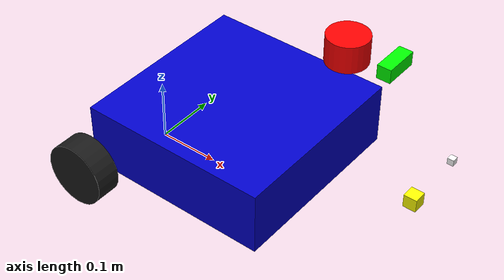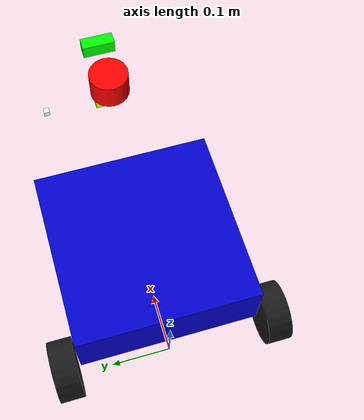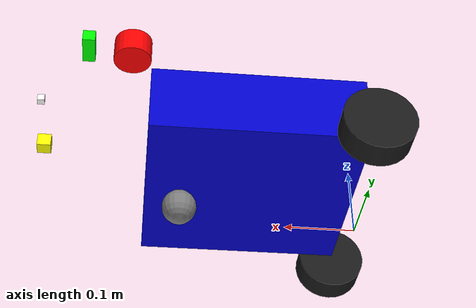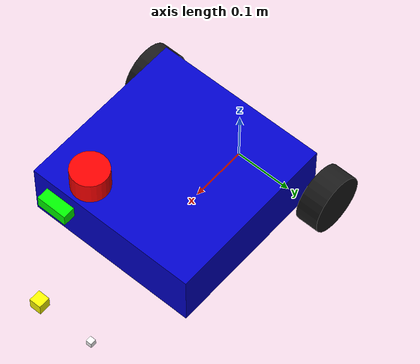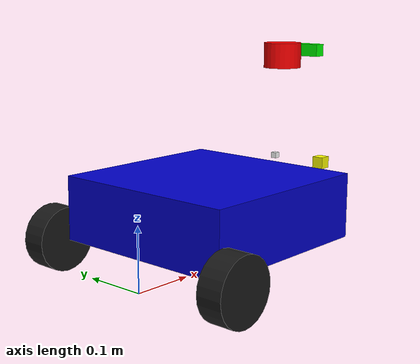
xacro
<?xml version="1.0"?>
<robot name="amr_vehicle" xmlns:xacro="http://www.ros.org/wiki/xacro">

  <!-- Model origin (matches Gazebo model frame, child of odom) -->
  <link name="base_link">
    <!-- Optional: a small dummy visual so we can see the exact origin in RViz if needed, but usually empty -->
  </link>

  <!-- Chassis Visual Link -->
  <link name="chassis_link">
    <visual>
      <geometry>
        <box size="0.3 0.3 0.1"/>
      </geometry>
      <material name="blue">
        <color rgba="0.0 0.0 0.8 1.0"/>
      </material>
      <!-- Visual offset: base_link->chassis_link is 0.15, 0, 0.075. Visual offset in SDF is 0, 0, 0.025 -->
      <origin xyz="0 0 0.025" rpy="0 0 0"/>
    </visual>
  </link>

  <joint name="base_to_chassis" type="fixed">
    <parent link="base_link"/>
    <child link="chassis_link"/>
    <origin xyz="0.15 0.0 0.075" rpy="0 0 0"/>
  </joint>

  <!-- Wheels -->
  <link name="left_wheel">
    <visual>
      <geometry>
        <cylinder radius="0.05" length="0.04"/>
      </geometry>
      <material name="black">
        <color rgba="0.1 0.1 0.1 1.0"/>
      </material>
    </visual>
  </link>

  <joint name="base_to_left_wheel" type="continuous">
    <parent link="base_link"/>
    <child link="left_wheel"/>
    <origin xyz="0 0.175 0.05" rpy="-1.5708 0 0"/>
    <axis xyz="0 0 1"/>
  </joint>

  <link name="right_wheel">
    <visual>
      <geometry>
        <cylinder radius="0.05" length="0.04"/>
      </geometry>
      <material name="black">
        <color rgba="0.1 0.1 0.1 1.0"/>
      </material>
    </visual>
  </link>

  <joint name="base_to_right_wheel" type="continuous">
    <parent link="base_link"/>
    <child link="right_wheel"/>
    <origin xyz="0 -0.175 0.05" rpy="1.5708 0 0"/>
    <axis xyz="0 0 1"/>
  </joint>

  <link name="caster_wheel">
    <visual>
      <geometry>
        <sphere radius="0.025"/>
      </geometry>
      <material name="grey">
        <color rgba="0.5 0.5 0.5 1.0"/>
      </material>
    </visual>
  </link>

  <joint name="base_to_caster" type="fixed">
    <parent link="base_link"/>
    <child link="caster_wheel"/>
    <origin xyz="0.25 0.0 0.025" rpy="0 0 0"/>
  </joint>

  <!-- Sensors -->
  <link name="lidar_link">
    <visual>
      <geometry>
        <cylinder radius="0.03" length="0.04"/>
      </geometry>
      <material name="red">
        <color rgba="1.0 0.0 0.0 1.0"/>
      </material>
    </visual>
  </link>
  <joint name="base_to_lidar" type="fixed">
    <parent link="base_link"/>
    <child link="lidar_link"/>
    <origin xyz="0.33 0.0 0.32" rpy="0 0 0"/>
  </joint>

  <link name="camera_link">
    <visual>
      <geometry>
        <box size="0.02 0.05 0.02"/>
      </geometry>
      <material name="green">
        <color rgba="0.0 1.0 0.0 1.0"/>
      </material>
    </visual>
  </link>
  <joint name="base_to_camera" type="fixed">
    <parent link="base_link"/>
    <child link="camera_link"/>
    <origin xyz="0.40 0.0 0.325" rpy="0 0 0"/>
  </joint>

  <link name="ultrasonic_link">
    <visual>
      <geometry>
        <box size="0.02 0.02 0.02"/>
      </geometry>
      <material name="yellow">
        <color rgba="1.0 1.0 0.0 1.0"/>
      </material>
    </visual>
  </link>
  <joint name="base_to_ultrasonic" type="fixed">
    <parent link="base_link"/>
    <child link="ultrasonic_link"/>
    <origin xyz="0.45 0.0 0.125" rpy="0 0 0"/>
  </joint>

  <link name="ir_link">
    <visual>
      <geometry>
        <box size="0.01 0.01 0.01"/>
      </geometry>
      <material name="white">
        <color rgba="1.0 1.0 1.0 1.0"/>
      </material>
    </visual>
  </link>
  <joint name="base_to_ir" type="fixed">
    <parent link="base_link"/>
    <child link="ir_link"/>
    <origin xyz="0.45 0.1 0.125" rpy="0 0 0"/>
  </joint>

  <link name="imu_link"/>
  <joint name="base_to_imu" type="fixed">
    <parent link="base_link"/>
    <child link="imu_link"/>
    <origin xyz="0.15 0.0 0.075" rpy="0 0 0"/>
  </joint>

</robot>
